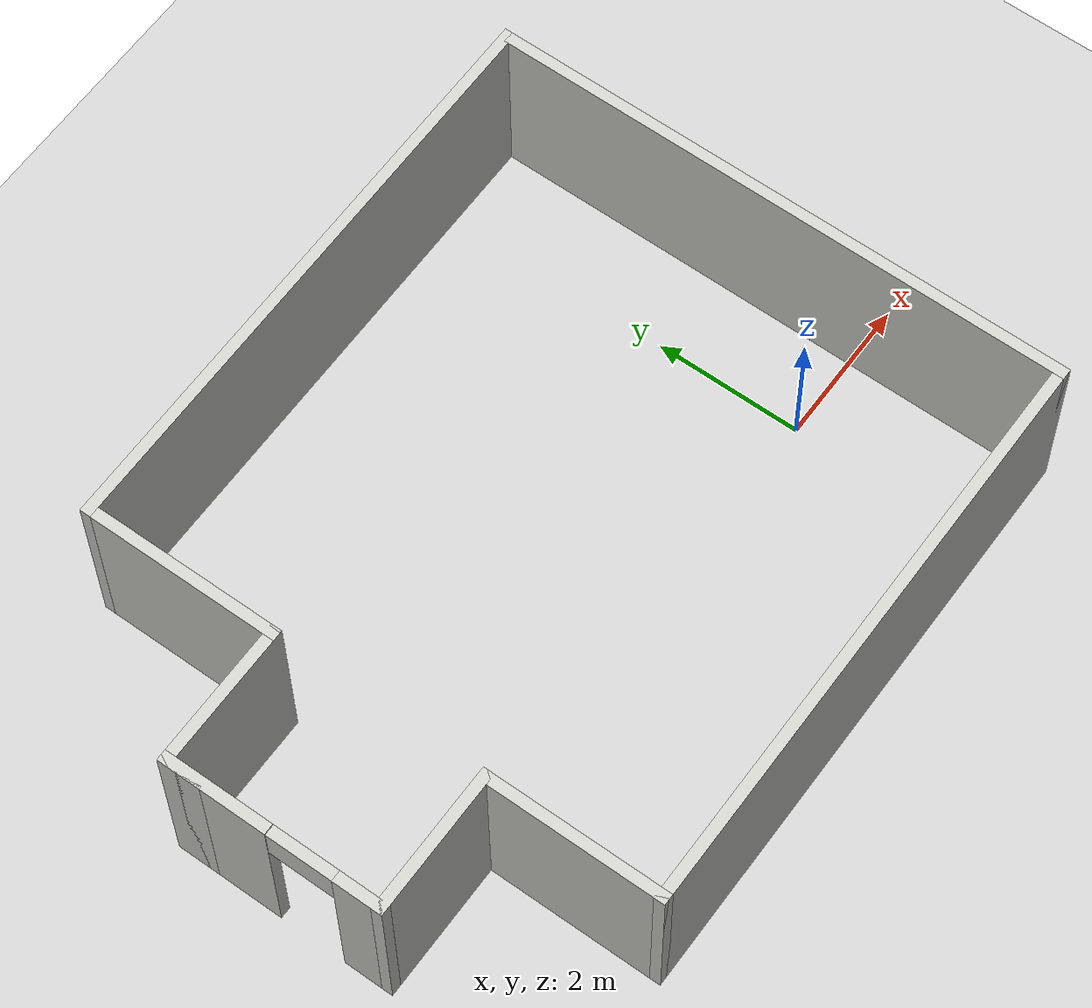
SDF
<sdf version="1.7">
 <world name="default">
  <light name="sun" type="directional">
   <pose>0 0 10 0 -0 0</pose>
   <diffuse>0.8 0.8 0.8 1</diffuse>
   <specular>0.2 0.2 0.2 1</specular>
   <attenuation>
    <range>1000</range>
    <constant>0.9</constant>
    <linear>0.01</linear>
    <quadratic>0.001</quadratic>
   </attenuation>
   <direction>-0.5 0.1 -0.9</direction>
   <spot><inner_angle>0</inner_angle><outer_angle>0</outer_angle><falloff>0</falloff></spot>
  </light>
  <model name="ground_plane">
   <static>1</static>
   <link name="link">
    <collision name="collision">
     <geometry><plane><normal>0 0 1</normal><size>100 100</size></plane></geometry>
     <surface>
      <contact><collide_bitmask>65535</collide_bitmask></contact>
      <friction><ode><mu>100</mu><mu2>50</mu2></ode></friction>
     </surface>
    </collision>
    <visual name="visual">
     <cast_shadows>0</cast_shadows>
     <geometry><plane><normal>0 0 1</normal><size>100 100</size></plane></geometry>
     <material>
      <script><uri>file://media/materials/scripts/gazebo.material</uri><name>Gazebo/Grey</name></script>
     </material>
    </visual>
   </link>
  </model>
  <gravity>0 0 -9.8</gravity>
  <magnetic_field>6e-06 2.3e-05 -4.2e-05</magnetic_field>
  <atmosphere type="adiabatic"/>
  <physics type="ode">
   <max_step_size>0.001</max_step_size>
   <real_time_factor>1</real_time_factor>
   <real_time_update_rate>1000</real_time_update_rate>
  </physics>
  <scene><ambient>0.4 0.4 0.4 1</ambient><background>0.7 0.7 0.7 1</background><shadows>1</shadows></scene>
  <spherical_coordinates>
   <surface_model>EARTH_WGS84</surface_model>
   <latitude_deg>0</latitude_deg>
   <longitude_deg>0</longitude_deg>
   <elevation>0</elevation>
   <heading_deg>0</heading_deg>
  </spherical_coordinates>
  <model name="little_room">
   <pose>-3.63705 1.25442 0 0 -0 0</pose>
   <link name="Wall_10">
    <collision name="Wall_10_Collision">
     <geometry><box><size>2 0.15 2.5</size></box></geometry>
     <pose>0 0 1.25 0 -0 0</pose>
    </collision>
    <visual name="Wall_10_Visual">
     <pose>0 0 1.25 0 -0 0</pose>
     <geometry><box><size>2 0.15 2.5</size></box></geometry>
     <material>
      <script><uri>file://media/materials/scripts/gazebo.material</uri><name>Gazebo/CeilingTiled</name></script>
      <ambient>1 1 1 1</ambient>
     </material>
     <meta><layer>0</layer></meta>
    </visual>
    <pose>-3.925 -1.575 0 0 -0 3.14159</pose>
   </link>
   <link name="Wall_11">
    <pose>-4.85 -0.125 0 0 -0 1.5708</pose>
    <visual name="Wall_11_Visual_0">
     <pose>-1.18911 0 1.25 0 -0 0</pose>
     <geometry><box><size>0.67179 0.15 2.5</size></box></geometry>
     <material>
      <script><uri>file://media/materials/scripts/gazebo.material</uri><name>Gazebo/CeilingTiled</name></script>
      <ambient>1 1 1 1</ambient>
     </material>
     <meta><layer>0</layer></meta>
    </visual>
    <collision name="Wall_11_Collision_0">
     <geometry><box><size>0.67179 0.15 2.5</size></box></geometry>
     <pose>-1.18911 0 1.25 0 -0 0</pose>
    </collision>
    <visual name="Wall_11_Visual_1">
     <pose>0.785895 0 1.25 0 -0 0</pose>
     <geometry><box><size>1.47821 0.15 2.5</size></box></geometry>
     <material>
      <script><uri>file://media/materials/scripts/gazebo.material</uri><name>Gazebo/CeilingTiled</name></script>
      <ambient>1 1 1 1</ambient>
     </material>
     <meta><layer>0</layer></meta>
    </visual>
    <collision name="Wall_11_Collision_1">
     <geometry><box><size>1.47821 0.15 2.5</size></box></geometry>
     <pose>0.785895 0 1.25 0 -0 0</pose>
    </collision>
    <visual name="Wall_11_Visual_2">
     <pose>1.23189 0 1.25 0 -0 0</pose>
     <geometry><box><size>0.586217 0.15 2.5</size></box></geometry>
     <material>
      <script><uri>file://media/materials/scripts/gazebo.material</uri><name>Gazebo/CeilingTiled</name></script>
      <ambient>1 1 1 1</ambient>
     </material>
     <meta><layer>0</layer></meta>
    </visual>
    <collision name="Wall_11_Collision_2">
     <geometry><box><size>0.586217 0.15 2.5</size></box></geometry>
     <pose>1.23189 0 1.25 0 -0 0</pose>
    </collision>
    <visual name="Wall_11_Visual_3">
     <pose>-0.407213 0 2.25 0 -0 0</pose>
     <geometry><box><size>0.891993 0.15 0.5</size></box></geometry>
     <material>
      <script><uri>file://media/materials/scripts/gazebo.material</uri><name>Gazebo/CeilingTiled</name></script>
      <ambient>1 1 1 1</ambient>
     </material>
     <meta><layer>0</layer></meta>
    </visual>
    <collision name="Wall_11_Collision_3">
     <geometry><box><size>0.891993 0.15 0.5</size></box></geometry>
     <pose>-0.407213 0 2.25 0 -0 0</pose>
    </collision>
   </link>
   <link name="Wall_3">
    <collision name="Wall_3_Collision">
     <geometry><box><size>8 0.15 2.5</size></box></geometry>
     <pose>0 0 1.25 0 -0 0</pose>
    </collision>
    <visual name="Wall_3_Visual">
     <pose>0 0 1.25 0 -0 0</pose>
     <geometry><box><size>8 0.15 2.5</size></box></geometry>
     <material>
      <script><uri>file://media/materials/scripts/gazebo.material</uri><name>Gazebo/CeilingTiled</name></script>
      <ambient>1 1 1 1</ambient>
     </material>
     <meta><layer>0</layer></meta>
    </visual>
    <pose>0.925 -3.925 0 0 -0 0</pose>
   </link>
   <link name="Wall_4">
    <collision name="Wall_4_Collision">
     <geometry><box><size>8 0.15 2.5</size></box></geometry>
     <pose>0 0 1.25 0 -0 0</pose>
    </collision>
    <visual name="Wall_4_Visual">
     <pose>0 0 1.25 0 -0 0</pose>
     <geometry><box><size>8 0.15 2.5</size></box></geometry>
     <material>
      <script><uri>file://media/materials/scripts/gazebo.material</uri><name>Gazebo/CeilingTiled</name></script>
      <ambient>1 1 1 1</ambient>
     </material>
     <meta><layer>0</layer></meta>
    </visual>
    <pose>4.85 0 0 0 -0 1.5708</pose>
   </link>
   <link name="Wall_5">
    <collision name="Wall_5_Collision">
     <geometry><box><size>8 0.15 2.5</size></box></geometry>
     <pose>0 0 1.25 0 -0 0</pose>
    </collision>
    <visual name="Wall_5_Visual">
     <pose>0 0 1.25 0 -0 0</pose>
     <geometry><box><size>8 0.15 2.5</size></box></geometry>
     <material>
      <script><uri>file://media/materials/scripts/gazebo.material</uri><name>Gazebo/CeilingTiled</name></script>
      <ambient>1 1 1 1</ambient>
     </material>
     <meta><layer>0</layer></meta>
    </visual>
    <pose>0.925 3.925 0 0 -0 3.14159</pose>
   </link>
   <link name="Wall_6">
    <collision name="Wall_6_Collision">
     <geometry><box><size>2.75 0.15 2.5</size></box></geometry>
     <pose>0 0 1.25 0 -0 0</pose>
    </collision>
    <visual name="Wall_6_Visual">
     <pose>0 0 1.25 0 -0 0</pose>
     <geometry><box><size>2.75 0.15 2.5</size></box></geometry>
     <material>
      <script><uri>file://media/materials/scripts/gazebo.material</uri><name>Gazebo/CeilingTiled</name></script>
      <ambient>1 1 1 1</ambient>
     </material>
     <meta><layer>0</layer></meta>
    </visual>
    <pose>-3 2.625 0 0 -0 -1.5708</pose>
   </link>
   <link name="Wall_7">
    <collision name="Wall_7_Collision">
     <geometry><box><size>2 0.15 2.5</size></box></geometry>
     <pose>0 0 1.25 0 -0 0</pose>
    </collision>
    <visual name="Wall_7_Visual">
     <pose>0 0 1.25 0 -0 0</pose>
     <geometry><box><size>2 0.15 2.5</size></box></geometry>
     <material>
      <script><uri>file://media/materials/scripts/gazebo.material</uri><name>Gazebo/CeilingTiled</name></script>
      <ambient>1 1 1 1</ambient>
     </material>
     <meta><layer>0</layer></meta>
    </visual>
    <pose>-3.925 1.325 0 0 -0 3.14159</pose>
   </link>
   <link name="Wall_9">
    <collision name="Wall_9_Collision">
     <geometry><box><size>2.5 0.15 2.5</size></box></geometry>
     <pose>0 0 1.25 0 -0 0</pose>
    </collision>
    <visual name="Wall_9_Visual">
     <pose>0 0 1.25 0 -0 0</pose>
     <geometry><box><size>2.5 0.15 2.5</size></box></geometry>
     <material>
      <script><uri>file://media/materials/scripts/gazebo.material</uri><name>Gazebo/CeilingTiled</name></script>
      <ambient>1 1 1 1</ambient>
     </material>
     <meta><layer>0</layer></meta>
    </visual>
    <pose>-3 -2.75 0 0 -0 1.5708</pose>
   </link>
   <static>1</static>
  </model>
 </world>
</sdf>
